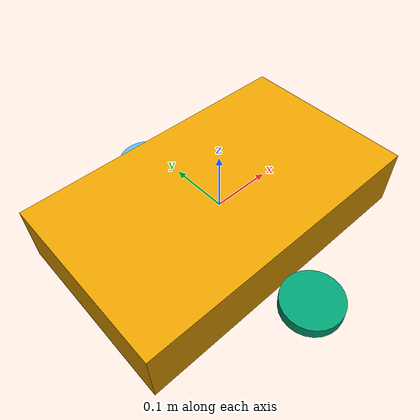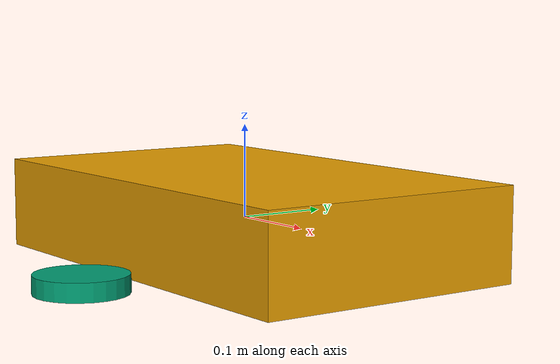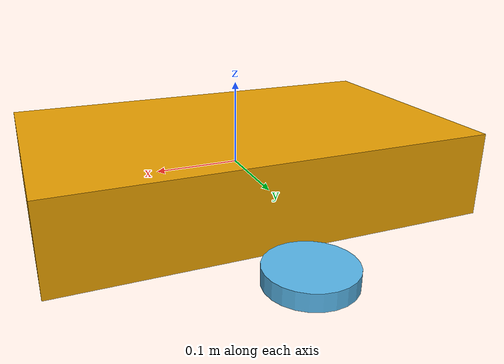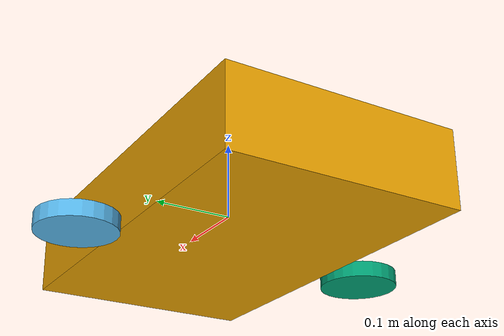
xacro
<?xml version="1.0"?>
<robot xmlns:xacro="http://www.ros.org/wiki/xacro" name="my_robot">

  <!-- Properties -->
  <xacro:property name="wheel_radius" value="0.05"/>
  <xacro:property name="wheel_width" value="0.02"/>
  <xacro:property name="base_length" value="0.5"/>

  <!-- Wheel macro -->
  <xacro:macro name="wheel" params="prefix reflect">
    <link name="${prefix}_wheel">
      <visual>
        <geometry>
          <cylinder radius="${wheel_radius}" length="${wheel_width}"/>
        </geometry>
      </visual>
    </link>

    <joint name="${prefix}_wheel_joint" type="continuous">
      <parent link="base_link"/>
      <child link="${prefix}_wheel"/>
      <origin xyz="0.0 ${reflect * 0.2} -0.05"/>
      <axis xyz="0 1 0"/>
    </joint>
  </xacro:macro>

  <!-- Base link -->
  <link name="base_link">
    <visual>
      <geometry>
        <box size="${base_length} 0.3 0.1"/>
      </geometry>
    </visual>
  </link>

  <!-- Instantiate wheels -->
  <xacro:wheel prefix="left" reflect="1"/>
  <xacro:wheel prefix="right" reflect="-1"/>

</robot>
